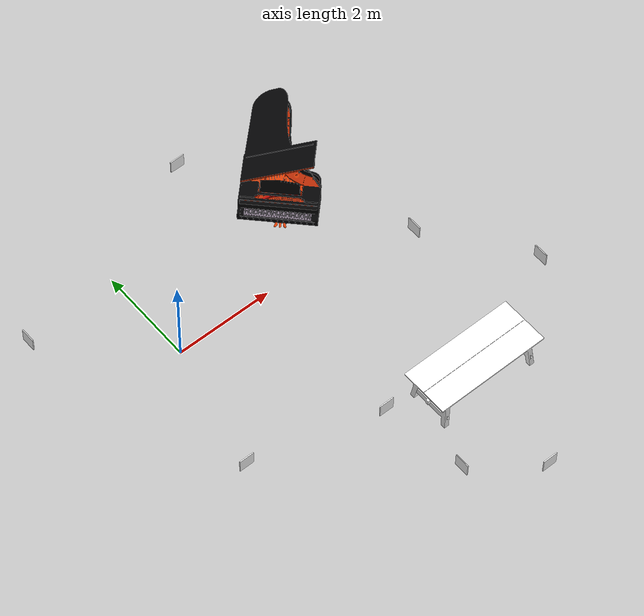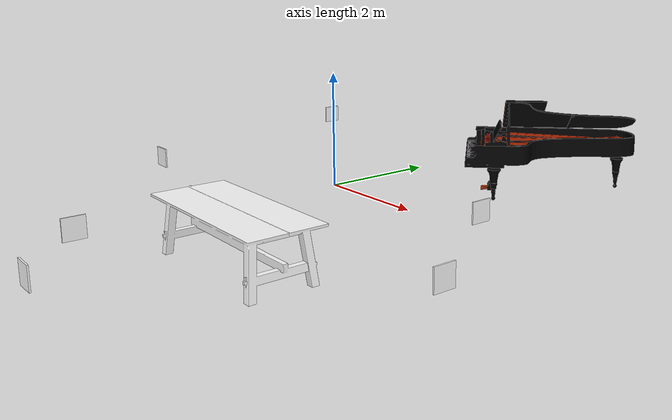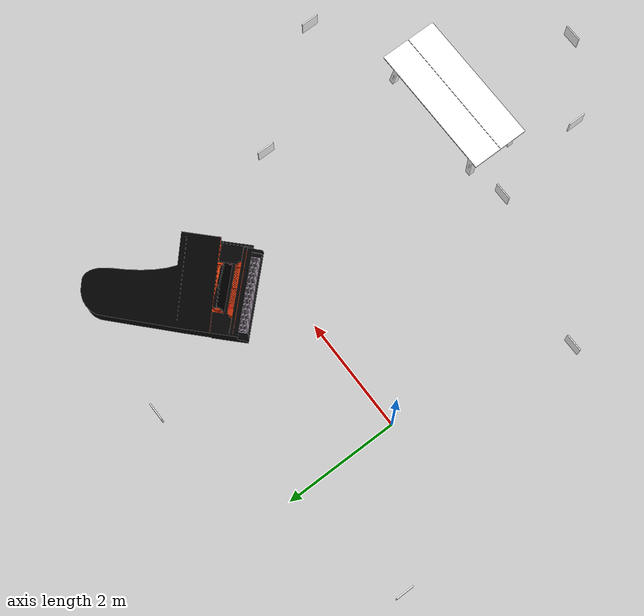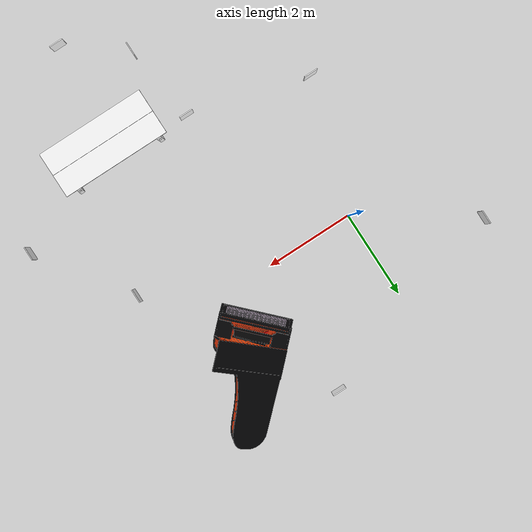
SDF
<sdf version="1.9">
 <world name="default">
  <plugin filename="gz-sim-physics-system" name="gz::sim::systems::Physics"/>
  <plugin filename="gz-sim-scene-broadcaster-system" name="gz::sim::systems::SceneBroadcaster"/>
  <plugin filename="gz-sim-user-commands-system" name="gz::sim::systems::UserCommands"/>
  <plugin filename="gz-sim-sensors-system" name="gz::sim::systems::Sensors">
   <render_engine>ogre2</render_engine>
  </plugin>
  <scene><shadows>false</shadows></scene>
  <light type="directional" name="sun">
   <pose>0 0 20 -1.3 0 0.5</pose>
   <diffuse>0.8 0.8 0.8 1</diffuse>
   <specular>0.01 0.01 0.01 1</specular>
   <intensity>2</intensity>
   <visualize>false</visualize>
  </light>
  <light type="point" name="point_light">
   <pose>0.73 0.09 8.77 0 0 0</pose>
   <diffuse>1 1 1 1</diffuse>
   <specular>.01 .01 .01 1</specular>
   <attenuation>
    <range>20</range>
    <linear>0.2</linear>
    <constant>0.8</constant>
    <quadratic>0.01</quadratic>
   </attenuation>
   <visualize>false</visualize>
  </light>
  <light type="point" name="point_light_01">
   <pose>3.482 -4.28 8.87 0 0 0</pose>
   <diffuse>1 1 1 1</diffuse>
   <specular>0.01 0.01 0.01 1</specular>
   <attenuation>
    <range>10</range>
    <linear>0.5</linear>
    <constant>0.8</constant>
    <quadratic>0.001</quadratic>
   </attenuation>
   <cast_shadows>false</cast_shadows>
   <visualize>false</visualize>
  </light>
  <light type="point" name="point_light_02">
   <pose>0.13 0.46 11.60 0 0 0</pose>
   <diffuse>1 1 1 1</diffuse>
   <specular>0.01 0.01 0.01 1</specular>
   <attenuation>
    <range>10</range>
    <linear>0.2</linear>
    <constant>0.5</constant>
    <quadratic>0.001</quadratic>
   </attenuation>
   <cast_shadows>false</cast_shadows>
   <visualize>false</visualize>
  </light>
  <light type="point" name="point_light_03">
   <pose>4.27 -1.27 11.21 0 0 0</pose>
   <diffuse>1 1 1 1</diffuse>
   <specular>0.01 0.01 0.01 1</specular>
   <attenuation>
    <range>10</range>
    <linear>0.5</linear>
    <constant>0.8</constant>
    <quadratic>0.001</quadratic>
   </attenuation>
   <cast_shadows>false</cast_shadows>
   <visualize>false</visualize>
  </light>
  <light type="point" name="point_light_04">
   <pose>-0.31 -3.78 8.61 0 0 0</pose>
   <diffuse>1 1 1 1</diffuse>
   <specular>.01 .01 .01 1</specular>
   <attenuation>
    <range>10</range>
    <linear>0.5</linear>
    <constant>0.8</constant>
    <quadratic>0.001</quadratic>
   </attenuation>
   <cast_shadows>false</cast_shadows>
   <visualize>false</visualize>
  </light>
  <include>
   <pose>3.45 -3.88 0.4 0 0 -1.57</pose>
   <name>Dining Table</name>
   <uri>model://Dining Table</uri>
  </include>
  <include><pose>2.98 0.85 0.411 0 0 -2.37</pose><name>Piano</name><uri>model://Piano</uri></include>
  <include><pose>0 0 -6.5 0 0 0</pose><name>posAprilTags</name><uri>model://posAprilTags</uri></include>
 </world>
</sdf>

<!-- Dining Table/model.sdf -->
<sdf version="1.6">
  <model name="DiningTable">
    <static>true</static>
    <link name="base_link">
      <visual name="visual_wood">
        <geometry>
          <mesh>
            <scale>1 1 1</scale>
            <uri>meshes/diningtable.dae</uri>
            <submesh>
              <name>Wood</name>
              <center>false</center>
            </submesh>
          </mesh>
        </geometry>
        <material>
          <diffuse>1.0 1.0 1.0</diffuse>
          <specular>1.0 1.0 1.0</specular>
          <pbr>
            <metal>
              <albedo_map>materials/textures/Wood_Albedo.png</albedo_map>
              <normal_map>materials/textures/Wood_Normal.png</normal_map>
              <roughness_map>materials/textures/Wood_Roughness.png</roughness_map>
            </metal>
          </pbr>
        </material>
      </visual>
      <visual name="visual_black">
        <geometry>
          <mesh>
            <scale>1 1 1</scale>
            <uri>meshes/diningtable.dae</uri>
            <submesh>
              <name>Black</name>
              <center>false</center>
            </submesh>
          </mesh>
        </geometry>
        <material>
          <diffuse>0.1 0.1 0.1</diffuse>
          <specular>1.0 1.0 1.0</specular>
          <pbr>
            <metal>
              <roughness>0.5</roughness>
            </metal>
          </pbr>
        </material>
      </visual>
      <collision name="Box011">
        <pose>0.0 0.302465 0.49338 -1.25664 0.0 0.0</pose>
        <geometry>
          <box>
            <size>0.058 0.091 1.10422</size>
          </box>
        </geometry>
      </collision>
      <collision name="Box010">
        <pose>0.0 -0.302465 0.49338 1.25664 0.0 0.0</pose>
        <geometry>
          <box>
            <size>0.058 0.091 1.10422</size>
          </box>
        </geometry>
      </collision>
      <collision name="Box009">
        <pose>-0.361336 -0.961929 0.36405 -0.10472 0.10472 -0.010472</pose>
        <geometry>
          <box>
            <size>0.1 0.1 0.736144</size>
          </box>
        </geometry>
      </collision>
      <collision name="Box008">
        <pose>0.361336 -0.961929 0.36405 -0.10472 -0.10472 0.010472</pose>
        <geometry>
          <box>
            <size>0.1 0.1 0.736144</size>
          </box>
        </geometry>
      </collision>
      <collision name="Box007">
        <pose>0.361336 0.961929 0.36405 0.10472 -0.10472 -0.010472</pose>
        <geometry>
          <box>
            <size>0.1 0.1 0.736144</size>
          </box>
        </geometry>
      </collision>
      <collision name="Box006">
        <pose>-0.361336 0.961929 0.36405 0.10472 0.10472 0.010472</pose>
        <geometry>
          <box>
            <size>0.1 0.1 0.736144</size>
          </box>
        </geometry>
      </collision>
      <collision name="Box005">
        <pose>0.0 -0.97917 0.236278 0.0 0.0 -1.5708</pose>
        <geometry>
          <box>
            <size>0.084456 0.884815 0.099045</size>
          </box>
        </geometry>
      </collision>
      <collision name="Box004">
        <pose>0.0 0.97917 0.236278 0.0 0.0 -1.5708</pose>
        <geometry>
          <box>
            <size>0.084456 0.884815 0.099045</size>
          </box>
        </geometry>
      </collision>
      <collision name="Box003">
        <pose>0.0 0.0 0.320813 0.0 0.0 0.0</pose>
        <geometry>
          <box>
            <size>0.0612 2.15808 0.1065</size>
          </box>
        </geometry>
      </collision>
      <collision name="Box002">
        <pose>0.0 0.0 0.664356 0.0 0.0 0.0</pose>
        <geometry>
          <box>
            <size>0.68 1.91 0.1065</size>
          </box>
        </geometry>
      </collision>
      <collision name="Box001">
        <pose>0.0 0.0 0.725 0.0 0.0 0.0</pose>
        <geometry>
          <box>
            <size>1.0 2.35 0.03</size>
          </box>
        </geometry>
      </collision>
    </link>
  </model>
</sdf>

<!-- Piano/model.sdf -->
<sdf version="1.6">
  <model name="Piano">
    <static>true</static>
    <link name="base_link">
      <visual name="visual">
        <geometry>
          <mesh>
            <uri>meshes/piano.dae</uri>
          </mesh>
        </geometry>
      </visual>
      <collision name="Box001">
        <pose>0.243129 0.00788122 0.603422 0.0 0.0 0.0</pose>
        <geometry>
          <box>
            <size>0.287229 1.44324 0.144997</size>
          </box>
        </geometry>
      </collision>
      <collision name="Box002">
        <pose>0.0175615 0.00788122 0.695495 0.0 0.0 0.0</pose>
        <geometry>
          <box>
            <size>0.413609 1.44324 0.329144</size>
          </box>
        </geometry>
      </collision>
      <collision name="Box003">
        <pose>-0.392478 0.00788116 0.734841 0.0 0.0 0.0</pose>
        <geometry>
          <box>
            <size>0.413609 1.44324 0.329144</size>
          </box>
        </geometry>
      </collision>
      <collision name="Box004">
        <pose>-1.36447 -0.325266 0.734841 0.0 0.0 0.0</pose>
        <geometry>
          <box>
            <size>1.67512 0.793779 0.329144</size>
          </box>
        </geometry>
      </collision>
      <collision name="Box005">
        <pose>-0.803242 -0.111498 0.734841 0.0 0.0 0.444273</pose>
        <geometry>
          <box>
            <size>0.921315 0.627086 0.329144</size>
          </box>
        </geometry>
      </collision>
      <collision name="Box006">
        <pose>-0.0877448 -0.00134659 0.944505 2.01187 0.0 -1.5708</pose>
        <geometry>
          <box>
            <size>0.73488 0.268691 0.036744</size>
          </box>
        </geometry>
      </collision>
      <collision name="Box007">
        <pose>-0.488626 -0.0578904 1.18515 0.436548 0.0 0.0</pose>
        <geometry>
          <box>
            <size>0.588897 1.44324 0.052663</size>
          </box>
        </geometry>
      </collision>
      <collision name="Box008">
        <pose>-1.36447 -0.359794 1.04429 0.436548 0.0 0.0</pose>
        <geometry>
          <box>
            <size>1.67512 0.793779 0.0526631</size>
          </box>
        </geometry>
      </collision>
      <collision name="Box009">
        <pose>-0.803242 -0.166074 1.13467 0.398713 -0.182742 0.407253</pose>
        <geometry>
          <box>
            <size>0.921315 0.627086 0.0526631</size>
          </box>
        </geometry>
      </collision>
      <collision name="Box010">
        <pose>-0.00645127 0.0227667 0.283169 1.5708 0.0 -1.5708</pose>
        <geometry>
          <box>
            <size>0.268691 0.519009 0.0353184</size>
          </box>
        </geometry>
      </collision>
      <collision name="Box011">
        <pose>0.0450188 0.0232733 0.0405282 0.0 0.0 0.0</pose>
        <geometry>
          <box>
            <size>0.196833 0.240713 0.0358812</size>
          </box>
        </geometry>
      </collision>
      <collision name="Cylinder001">
        <pose>-0.0444827 -0.580177 0.27691 0.0 0.0 0.0</pose>
        <geometry>
          <cylinder>
            <length>0.553819</length>
            <radius>0.0438295</radius>
          </cylinder>
        </geometry>
      </collision>
      <collision name="Cylinder002">
        <pose>-0.0444827 0.607649 0.27691 0.0 0.0 0.0</pose>
        <geometry>
          <cylinder>
            <length>0.553819</length>
            <radius>0.0438295</radius>
          </cylinder>
        </geometry>
      </collision>
      <collision name="Cylinder003">
        <pose>-1.9561 -0.300735 0.27691 0.0 0.0 0.0</pose>
        <geometry>
          <cylinder>
            <length>0.553819</length>
            <radius>0.0438295</radius>
          </cylinder>
        </geometry>
      </collision>
    </link>
  </model>
</sdf>

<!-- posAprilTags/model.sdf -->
<sdf version="1.9">
  <model name="posAprilTags">

    <!-- fridge -->
    <model name="tag_0">
      <pose>1.75 -3.535 7.3 1.57079 1.57079 0</pose>
      <static>true</static>
      <link name="link">
        <visual name="visual">
          <geometry>
            <box>
              <size>0.3 0.3 0.02</size>
            </box>
          </geometry>
          <material>
            <diffuse>1 1 1 1</diffuse>
            <specular>0.4 0.4 0.4 1</specular>
            <pbr>
              <metal>
                <albedo_map>materials/textures/tag36_11_00000.png</albedo_map>
                <double_sided>true</double_sided>
              </metal>
            </pbr>
          </material>
        </visual>
      </link>
    </model>

    <!-- back glass door -->
    <model name="tag_1">
      <pose>2.2 2.835 7.3 1.57079 1.57079 0</pose>
      <static>true</static>
      <link name="link">
        <visual name="visual">
          <geometry>
            <box>
              <size>0.3 0.3 0.02</size>
            </box>
          </geometry>
          <material>
            <diffuse>1 1 1 1</diffuse>
            <specular>0.4 0.4 0.4 1</specular>
            <pbr>
              <metal>
                <albedo_map>materials/textures/tag36_11_00001.png</albedo_map>
                <double_sided>true</double_sided>
              </metal>
            </pbr>
          </material>
        </visual>
      </link>
    </model>

    <!-- window -->
    <model name="tag_2">
      <pose>5.935 -2.89 7.3 0 1.57079 0</pose>
      <static>true</static>
      <link name="link">
        <visual name="visual">
          <geometry>
            <box>
              <size>0.3 0.3 0.02</size>
            </box>
          </geometry>
          <material>
            <diffuse>1 1 1 1</diffuse>
            <specular>0.4 0.4 0.4 1</specular>
            <pbr>
              <metal>
                <albedo_map>materials/textures/tag36_11_00002.png</albedo_map>
                <double_sided>true</double_sided>
              </metal>
            </pbr>
          </material>
        </visual>
      </link>
    </model>

    <!-- kitchen -->
    <model name="tag_3">
      <pose>3.17 -6.14 7.3 1.57079 1.57079 0</pose>
      <static>true</static>
      <link name="link">
        <visual name="visual">
          <geometry>
            <box>
              <size>0.3 0.3 0.02</size>
            </box>
          </geometry>
          <material>
            <diffuse>1 1 1 1</diffuse>
            <specular>0.4 0.4 0.4 1</specular>
            <pbr>
              <metal>
                <albedo_map>materials/textures/tag36_11_00003.png</albedo_map>
                <double_sided>true</double_sided>
              </metal>
            </pbr>
          </material>
        </visual>
      </link>
    </model>

    <!-- back door -->
    <model name="tag_4">
      <pose>-2.18 1.5 7.3 0 1.57079 0</pose>
      <static>true</static>
      <link name="link">
        <visual name="visual">
          <geometry>
            <box>
              <size>0.3 0.3 0.02</size>
            </box>
          </geometry>
          <material>
            <diffuse>1 1 1 1</diffuse>
            <specular>0.4 0.4 0.4 1</specular>
            <pbr>
              <metal>
                <albedo_map>materials/textures/tag36_11_00004.png</albedo_map>
                <double_sided>true</double_sided>
              </metal>
            </pbr>
          </material>
        </visual>
      </link>
    </model>

    <!-- piano -->
    <model name="tag_5">
      <pose>4.59 -1 7.3 0 1.57079 0</pose>
      <static>true</static>
      <link name="link">
        <visual name="visual">
          <geometry>
            <box>
              <size>0.3 0.3 0.02</size>
            </box>
          </geometry>
          <material>
            <diffuse>1 1 1 1</diffuse>
            <specular>0.4 0.4 0.4 1</specular>
            <pbr>
              <metal>
                <albedo_map>materials/textures/tag36_11_00005.png</albedo_map>
                <double_sided>true</double_sided>
              </metal>
            </pbr>
          </material>
        </visual>
      </link>
    </model>

    <!-- front door -->
    <model name="tag_6">
      <pose>-0.8 -2.85 7.3 1.57079 1.57079 0</pose>
      <static>true</static>
      <link name="link">
        <visual name="visual">
          <geometry>
            <box>
              <size>0.3 0.3 0.02</size>
            </box>
          </geometry>
          <material>
            <diffuse>1 1 1 1</diffuse>
            <specular>0.4 0.4 0.4 1</specular>
            <pbr>
              <metal>
                <albedo_map>materials/textures/tag36_11_00006.png</albedo_map>
                <double_sided>true</double_sided>
              </metal>
            </pbr>
          </material>
        </visual>
      </link>
    </model>

    <model name="tag_7">
      <pose>1.98 -5.23 7.3 0 1.57079 0</pose>
      <static>true</static>
      <link name="link">
        <visual name="visual">
          <geometry>
            <box>
              <size>0.3 0.3 0.02</size>
            </box>
          </geometry>
          <material>
            <diffuse>1 1 1 1</diffuse>
            <specular>0.4 0.4 0.4 1</specular>
            <pbr>
              <metal>
                <albedo_map>materials/textures/tag36_11_00007.png</albedo_map>
                <double_sided>true</double_sided>
              </metal>
            </pbr>
          </material>
        </visual>
      </link>
    </model>

  </model>
</sdf>
